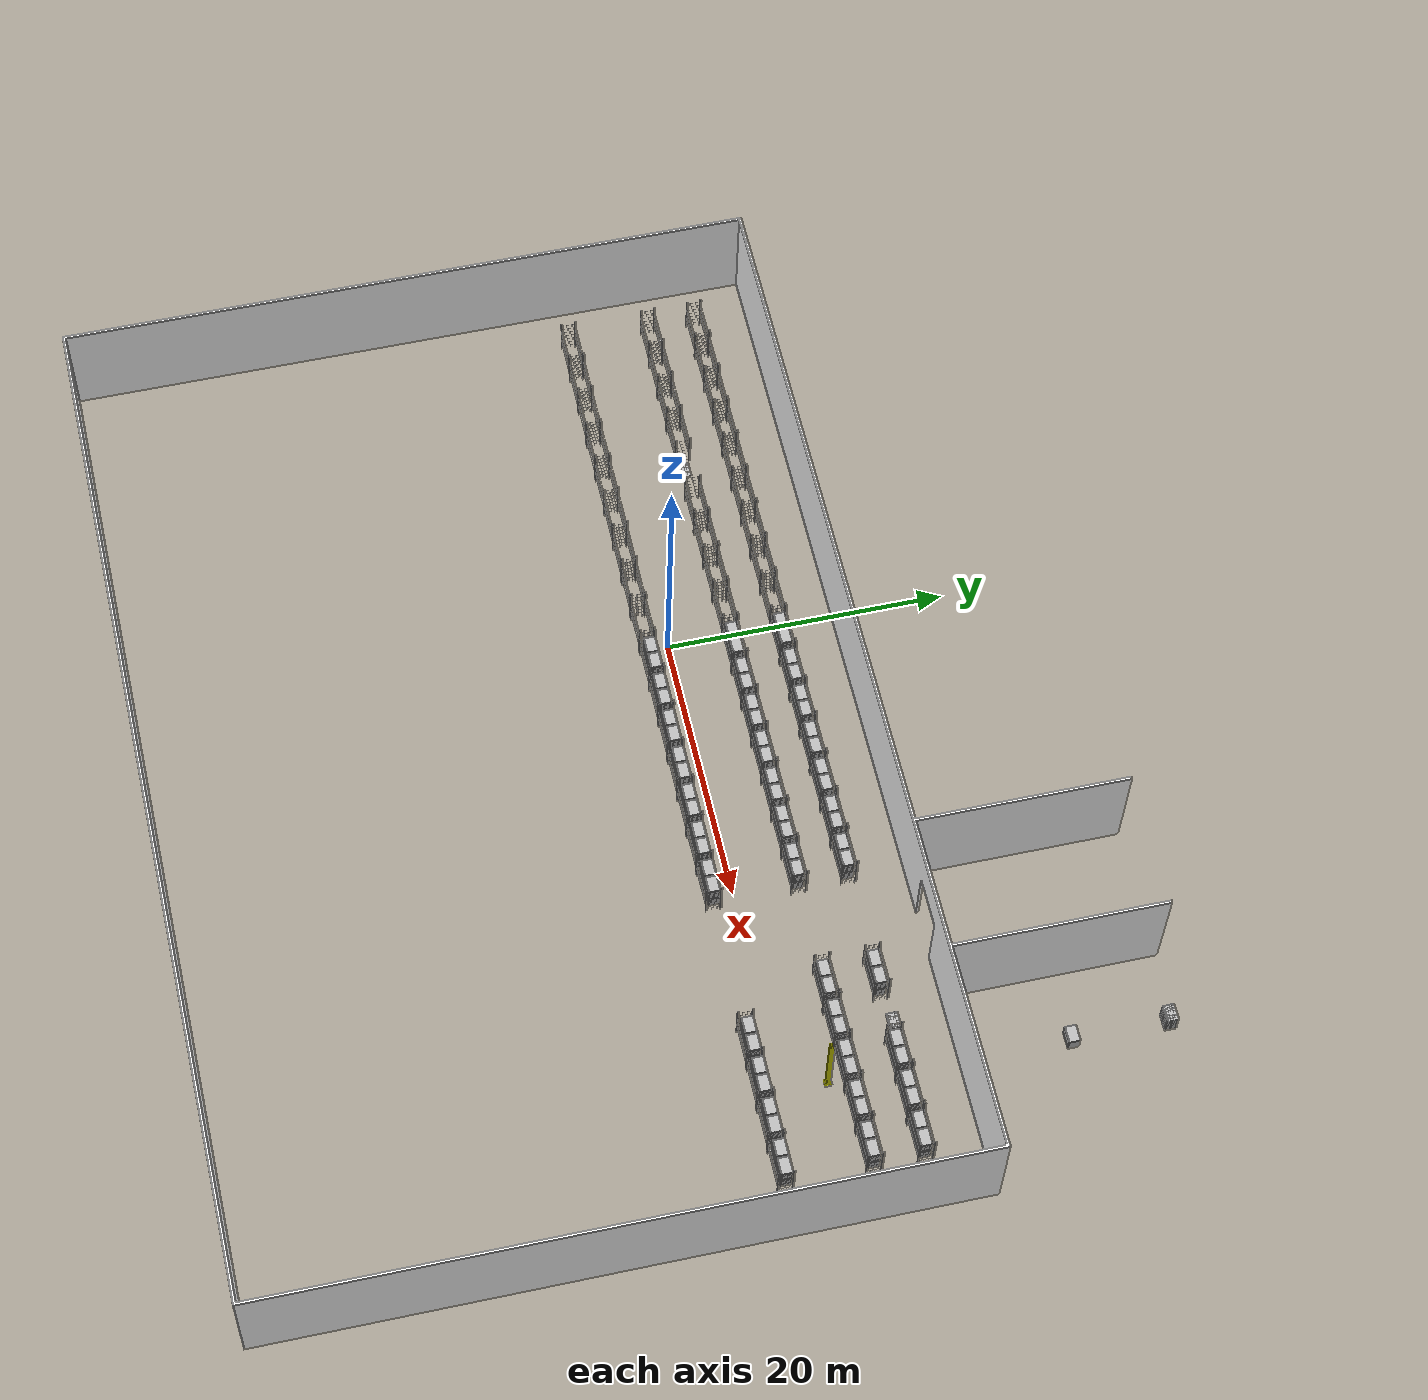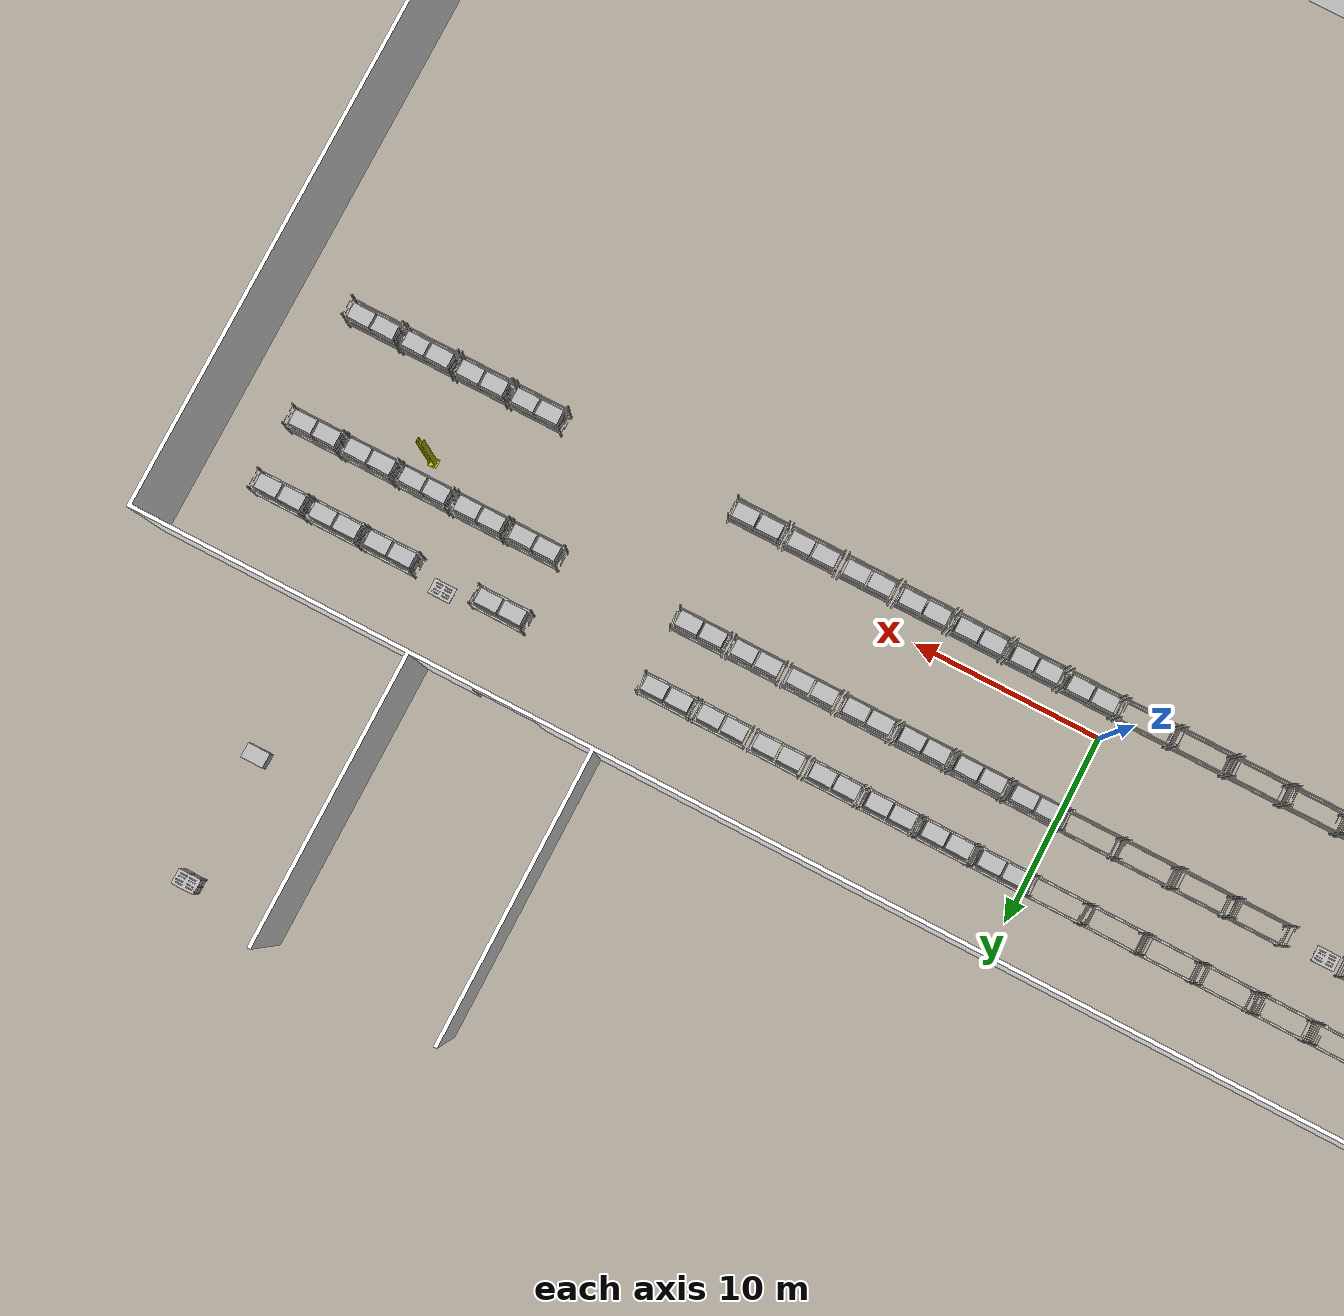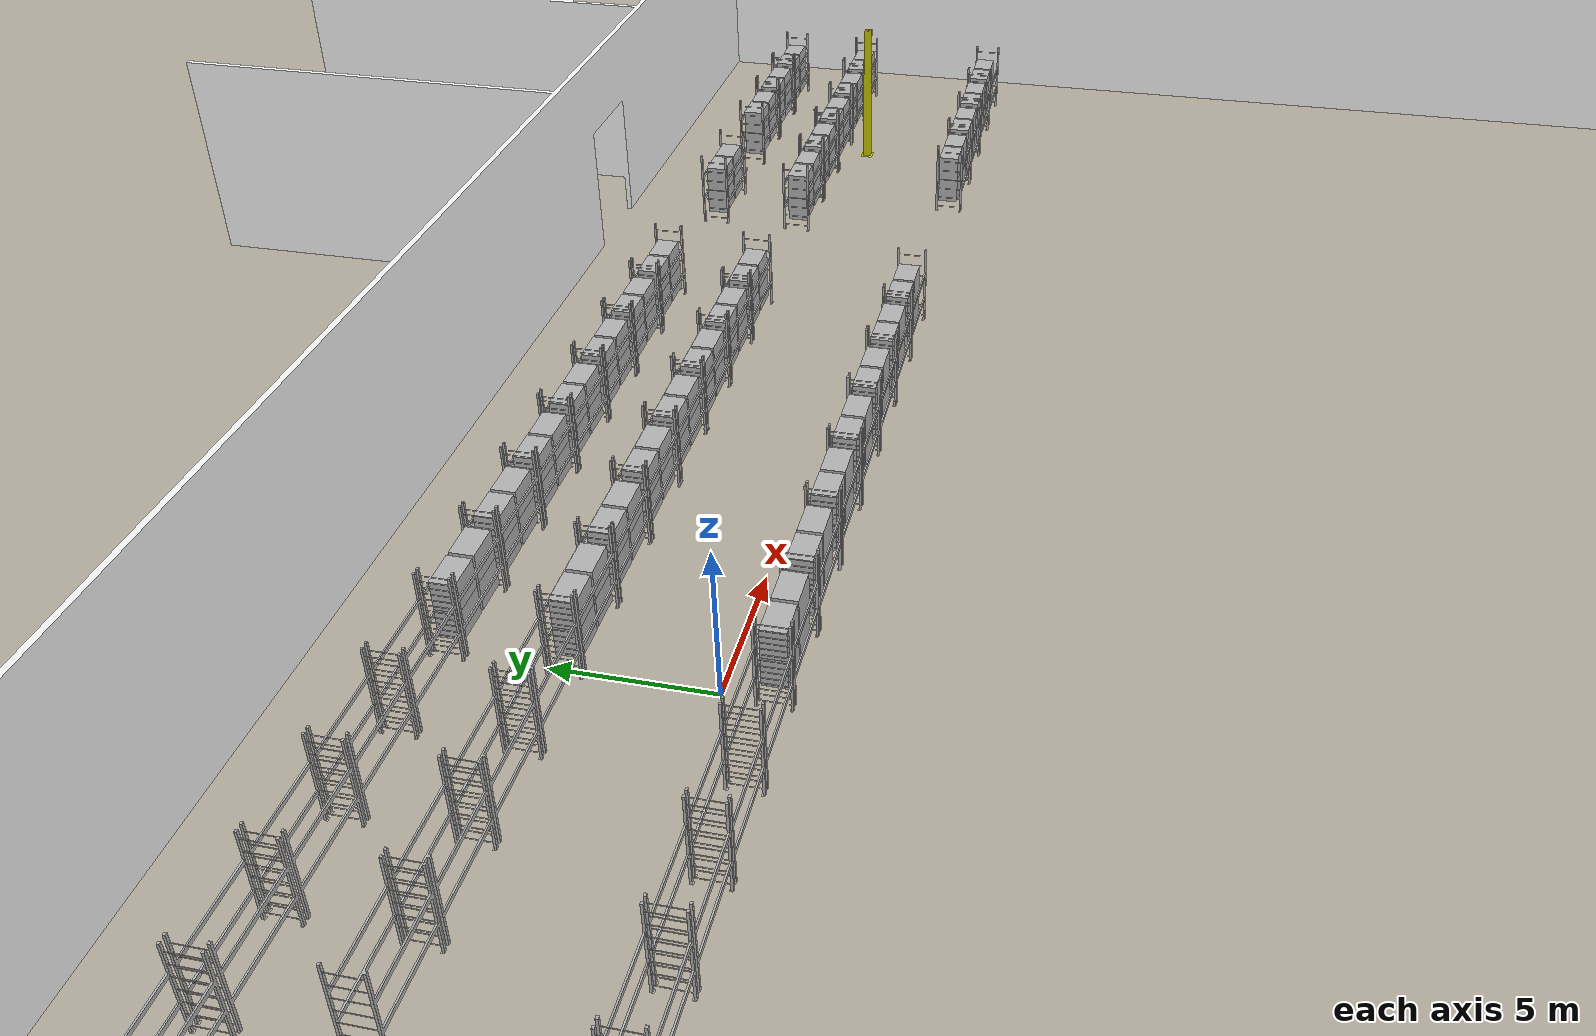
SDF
<sdf version="1.8">
 <world name="default">
  <gravity>0 0 -9.8</gravity>
  <physics type="ode">
   <max_step_size>0.01</max_step_size>
   <real_time_update_rate>100</real_time_update_rate>
   <real_time_factor>1</real_time_factor>
  </physics>
  <plugin filename="gz-sim-physics-system" name="gz::sim::systems::Physics"/>
  <plugin filename="gz-sim-user-commands-system" name="gz::sim::systems::UserCommands"/>
  <plugin filename="gz-sim-scene-broadcaster-system" name="gz::sim::systems::SceneBroadcaster"/>
  <plugin filename="gz-sim-sensors-system" name="gz::sim::systems::Sensors">
   <render_engine>ogre2</render_engine>
  </plugin>
  <plugin filename="gz-sim-imu-system" name="gz::sim::systems::Imu"/>
  <plugin filename="gz-sim-contact-system" name="gz::sim::systems::Contact"/>
  <plugin filename="gz-sim-triggered-publisher-system" name="gz::sim::systems::TriggeredPublisher"/>
  <scene>
   <ambient>1 1 1 1</ambient>
   <background>0.3 0.7 0.9 1</background>
   <shadows>0</shadows>
   <grid>false</grid>
  </scene>
  <light type="directional" name="sun">
   <cast_shadows>false</cast_shadows>
   <pose>0 0 10 0 0 0</pose>
   <diffuse>0.8 0.8 0.8 1</diffuse>
   <specular>0.2 0.2 0.2 1</specular>
   <attenuation>
    <range>1000</range>
    <constant>0.9</constant>
    <linear>0.01</linear>
    <quadratic>0.001</quadratic>
   </attenuation>
   <direction>0.1 0.1 -0.9</direction>
  </light>
  <include><uri>model://ground_collision</uri></include>
  <include><uri>model://factory</uri></include>
  <include>
   <static>1</static>
   <uri>model://shelf</uri>
   <name>shelf_wall_1_2</name>
   <pose>-27 -2  0.001 0 0 0</pose>
  </include>
  <include>
   <static>1</static>
   <uri>model://shelf</uri>
   <name>shelf_wall_1_3</name>
   <pose>-24 -2  0.001 0 0 0</pose>
  </include>
  <include>
   <static>1</static>
   <uri>model://shelf</uri>
   <name>shelf_wall_1_4</name>
   <pose>-21 -2  0.001 0 0 0</pose>
  </include>
  <include>
   <static>1</static>
   <uri>model://shelf</uri>
   <name>shelf_wall_1_5</name>
   <pose>-18 -2  0.001 0 0 0</pose>
  </include>
  <include>
   <static>1</static>
   <uri>model://shelf</uri>
   <name>shelf_wall_1_6</name>
   <pose>-15 -2  0.001 0 0 0</pose>
  </include>
  <include>
   <static>1</static>
   <uri>model://shelf</uri>
   <name>shelf_wall_1_7</name>
   <pose>-12 -2  0.001 0 0 0</pose>
  </include>
  <include>
   <static>1</static>
   <uri>model://shelf</uri>
   <name>shelf_wall_1_8</name>
   <pose>-9 -2  0.001 0 0 0</pose>
  </include>
  <include>
   <static>1</static>
   <uri>model://shelf</uri>
   <name>shelf_wall_1_9</name>
   <pose>-6 -2  0.001 0 0 0</pose>
  </include>
  <include>
   <static>1</static>
   <uri>model://shelf</uri>
   <name>shelf_wall_1_10</name>
   <pose>-3 -2  0.001 0 0 0</pose>
  </include>
  <include>
   <static>1</static>
   <uri>model://shelf</uri>
   <name>shelf_wall_1_11</name>
   <pose>0 -2  0.001 0 0 0</pose>
  </include>
  <include>
   <static>1</static>
   <uri>model://shelf</uri>
   <name>shelf_wall_1_12</name>
   <pose>3 -2  0.001 0 0 0</pose>
  </include>
  <include>
   <static>1</static>
   <uri>model://shelf</uri>
   <name>shelf_wall_1_13</name>
   <pose>6 -2  0.001 0 0 0</pose>
  </include>
  <include>
   <static>1</static>
   <uri>model://shelf</uri>
   <name>shelf_wall_1_14</name>
   <pose>9 -2  0.001 0 0 0</pose>
  </include>
  <include>
   <static>1</static>
   <uri>model://shelf</uri>
   <name>shelf_wall_1_15</name>
   <pose>12 -2  0.001 0 0 0</pose>
  </include>
  <include>
   <static>1</static>
   <uri>model://shelf</uri>
   <name>shelf_wall_1_16</name>
   <pose>15 -2  0.001 0 0 0</pose>
  </include>
  <include>
   <static>1</static>
   <uri>model://shelf</uri>
   <name>shelf_wall_1_17</name>
   <pose>18 -2  0.001 0 0 0</pose>
  </include>
  <include>
   <static>1</static>
   <uri>model://shelf</uri>
   <name>shelf_wall_1_21</name>
   <pose>30 -2  0.001 0 0 0</pose>
  </include>
  <include>
   <static>1</static>
   <uri>model://shelf</uri>
   <name>shelf_wall_1_22</name>
   <pose>33 -2  0.001 0 0 0</pose>
  </include>
  <include>
   <static>1</static>
   <uri>model://shelf</uri>
   <name>shelf_wall_1_23</name>
   <pose>36 -2  0.001 0 0 0</pose>
  </include>
  <include>
   <static>1</static>
   <uri>model://shelf</uri>
   <name>shelf_wall_1_24</name>
   <pose>39 -2  0.001 0 0 0</pose>
  </include>
  <include>
   <static>1</static>
   <uri>model://shelf</uri>
   <name>shelf_wall_2_2</name>
   <pose>-27 4  0.001 0 0 0</pose>
  </include>
  <include>
   <static>1</static>
   <uri>model://shelf</uri>
   <name>shelf_wall_2_3</name>
   <pose>-24 4  0.001 0 0 0</pose>
  </include>
  <include>
   <static>1</static>
   <uri>model://shelf</uri>
   <name>shelf_wall_2_4</name>
   <pose>-21 4  0.001 0 0 0</pose>
  </include>
  <include>
   <static>1</static>
   <uri>model://shelf</uri>
   <name>shelf_wall_2_5</name>
   <pose>-18 4  0.001 0 0 0</pose>
  </include>
  <include>
   <static>1</static>
   <uri>model://shelf</uri>
   <name>shelf_wall_2_7</name>
   <pose>-12 4  0.001 0 0 0</pose>
  </include>
  <include>
   <static>1</static>
   <uri>model://shelf</uri>
   <name>shelf_wall_2_8</name>
   <pose>-9 4  0.001 0 0 0</pose>
  </include>
  <include>
   <static>1</static>
   <uri>model://shelf</uri>
   <name>shelf_wall_2_9</name>
   <pose>-6 4  0.001 0 0 0</pose>
  </include>
  <include>
   <static>1</static>
   <uri>model://shelf</uri>
   <name>shelf_wall_2_10</name>
   <pose>-3 4  0.001 0 0 0</pose>
  </include>
  <include>
   <static>1</static>
   <uri>model://shelf</uri>
   <name>shelf_wall_2_11</name>
   <pose>0 4  0.001 0 0 0</pose>
  </include>
  <include>
   <static>1</static>
   <uri>model://shelf</uri>
   <name>shelf_wall_2_12</name>
   <pose>3 4  0.001 0 0 0</pose>
  </include>
  <include>
   <static>1</static>
   <uri>model://shelf</uri>
   <name>shelf_wall_2_13</name>
   <pose>6 4  0.001 0 0 0</pose>
  </include>
  <include>
   <static>1</static>
   <uri>model://shelf</uri>
   <name>shelf_wall_2_14</name>
   <pose>9 4  0.001 0 0 0</pose>
  </include>
  <include>
   <static>1</static>
   <uri>model://shelf</uri>
   <name>shelf_wall_2_15</name>
   <pose>12 4  0.001 0 0 0</pose>
  </include>
  <include>
   <static>1</static>
   <uri>model://shelf</uri>
   <name>shelf_wall_2_16</name>
   <pose>15 4  0.001 0 0 0</pose>
  </include>
  <include>
   <static>1</static>
   <uri>model://shelf</uri>
   <name>shelf_wall_2_17</name>
   <pose>18 4  0.001 0 0 0</pose>
  </include>
  <include>
   <static>1</static>
   <uri>model://shelf</uri>
   <name>shelf_wall_2_20</name>
   <pose>27 4  0.001 0 0 0</pose>
  </include>
  <include>
   <static>1</static>
   <uri>model://shelf</uri>
   <name>shelf_wall_2_21</name>
   <pose>30 4  0.001 0 0 0</pose>
  </include>
  <include>
   <static>1</static>
   <uri>model://shelf</uri>
   <name>shelf_wall_2_22</name>
   <pose>33 4  0.001 0 0 0</pose>
  </include>
  <include>
   <static>1</static>
   <uri>model://shelf</uri>
   <name>shelf_wall_2_23</name>
   <pose>36 4  0.001 0 0 0</pose>
  </include>
  <include>
   <static>1</static>
   <uri>model://shelf</uri>
   <name>shelf_wall_2_24</name>
   <pose>39 4  0.001 0 0 0</pose>
  </include>
  <include>
   <static>1</static>
   <uri>model://shelf</uri>
   <name>shelf_wall_3_2</name>
   <pose>-27 7.5  0.001 0 0 0</pose>
  </include>
  <include>
   <static>1</static>
   <uri>model://shelf</uri>
   <name>shelf_wall_3_3</name>
   <pose>-24 7.5  0.001 0 0 0</pose>
  </include>
  <include>
   <static>1</static>
   <uri>model://shelf</uri>
   <name>shelf_wall_3_4</name>
   <pose>-21 7.5  0.001 0 0 0</pose>
  </include>
  <include>
   <static>1</static>
   <uri>model://shelf</uri>
   <name>shelf_wall_3_5</name>
   <pose>-18 7.5  0.001 0 0 0</pose>
  </include>
  <include>
   <static>1</static>
   <uri>model://shelf</uri>
   <name>shelf_wall_3_6</name>
   <pose>-15 7.5  0.001 0 0 0</pose>
  </include>
  <include>
   <static>1</static>
   <uri>model://shelf</uri>
   <name>shelf_wall_3_7</name>
   <pose>-12 7.5  0.001 0 0 0</pose>
  </include>
  <include>
   <static>1</static>
   <uri>model://shelf</uri>
   <name>shelf_wall_3_8</name>
   <pose>-9 7.5  0.001 0 0 0</pose>
  </include>
  <include>
   <static>1</static>
   <uri>model://shelf</uri>
   <name>shelf_wall_3_9</name>
   <pose>-6 7.5  0.001 0 0 0</pose>
  </include>
  <include>
   <static>1</static>
   <uri>model://shelf</uri>
   <name>shelf_wall_3_10</name>
   <pose>-3 7.5  0.001 0 0 0</pose>
  </include>
  <include>
   <static>1</static>
   <uri>model://shelf</uri>
   <name>shelf_wall_3_11</name>
   <pose>0 7.5  0.001 0 0 0</pose>
  </include>
  <include>
   <static>1</static>
   <uri>model://shelf</uri>
   <name>shelf_wall_3_12</name>
   <pose>3 7.5  0.001 0 0 0</pose>
  </include>
  <include>
   <static>1</static>
   <uri>model://shelf</uri>
   <name>shelf_wall_3_13</name>
   <pose>6 7.5  0.001 0 0 0</pose>
  </include>
  <include>
   <static>1</static>
   <uri>model://shelf</uri>
   <name>shelf_wall_3_14</name>
   <pose>9 7.5  0.001 0 0 0</pose>
  </include>
  <include>
   <static>1</static>
   <uri>model://shelf</uri>
   <name>shelf_wall_3_15</name>
   <pose>12 7.5  0.001 0 0 0</pose>
  </include>
  <include>
   <static>1</static>
   <uri>model://shelf</uri>
   <name>shelf_wall_3_16</name>
   <pose>15 7.5  0.001 0 0 0</pose>
  </include>
  <include>
   <static>1</static>
   <uri>model://shelf</uri>
   <name>shelf_wall_3_17</name>
   <pose>18 7.5  0.001 0 0 0</pose>
  </include>
  <include>
   <static>1</static>
   <uri>model://shelf</uri>
   <name>shelf_wall_3_20</name>
   <pose>27 7.5  0.001 0 0 0</pose>
  </include>
  <include>
   <static>1</static>
   <uri>model://shelf</uri>
   <name>shelf_wall_3_22</name>
   <pose>33 7.5  0.001 0 0 0</pose>
  </include>
  <include>
   <static>1</static>
   <uri>model://shelf</uri>
   <name>shelf_wall_3_23</name>
   <pose>36 7.5  0.001 0 0 0</pose>
  </include>
  <include>
   <static>1</static>
   <uri>model://shelf</uri>
   <name>shelf_wall_3_24</name>
   <pose>39 7.5  0.001 0 0 0</pose>
  </include>
  <include><uri>model://eur_pallet</uri><name>pallet_group_pickup</name><pose>-15 4 0.001 0 0 0</pose></include>
  <include>
   <uri>model://eur_pallet</uri>
   <name>pallet_group_dropoff</name>
   <pose>31 8 0.001 0 -0 0</pose>
  </include>
  <include><uri>model://eur_pallet</uri><name>pallet_stack2_n1</name><pose>35 26 0.1 0 0 0</pose></include>
  <include><uri>model://eur_pallet</uri><name>pallet_stack2_n2</name><pose>35 26 0.25 0 0 0</pose></include>
  <include><uri>model://eur_pallet</uri><name>pallet_stack2_n3</name><pose>35 26 0.4 0 0 0</pose></include>
  <include><uri>model://eur_pallet</uri><name>pallet_stack2_n4</name><pose>35 26 0.55 0 0 0</pose></include>
  <include><uri>model://eur_pallet</uri><name>pallet_stack2_n5</name><pose>35 26 0.7 0 0 0</pose></include>
  <include><uri>model://eur_pallet</uri><name>pallet_stack2_n6</name><pose>35 26 0.85 0 0 0</pose></include>
  <include><uri>model://eur_pallet</uri><name>pallet_stack2_n7</name><pose>35 26 1.0 0 0 0</pose></include>
  <include><uri>model://eur_pallet</uri><name>pallet_stack2_n8</name><pose>35 26 1.15 0 0 0</pose></include>
  <include><uri>model://eur_pallet</uri><name>pallet_stack2_n9</name><pose>35 26 1.3 0 0 0</pose></include>
  <include><uri>model://eur_pallet</uri><name>pallet_stack2_n10</name><pose>35 26 1.45 0 0 0</pose></include>
  <include><uri>model://box_1185x785x1010</uri><name>box_move</name><pose>35 20 0.4 0 0 0</pose></include>
  <include>
   <static>1</static>
   <uri>model://support_pole</uri>
   <name>support_pole_move</name>
   <pose>35 3 0.001 0 0 0</pose>
  </include>
  <include>
   <uri>model://box_1185x785x1010</uri>
   <name>shelf_box_r1_n1_br</name>
   <pose>0.2 -1.1 0.4 0 0 0</pose>
  </include>
  <include>
   <uri>model://box_1185x785x1010</uri>
   <name>shelf_box_r1_n1_tr</name>
   <pose>0.2 -1.1 1.4 0 0 0</pose>
  </include>
  <include>
   <uri>model://box_1185x785x1010</uri>
   <name>shelf_box_r1_n1_bl</name>
   <pose>1.5 -1.1 0.4 0 0 0</pose>
  </include>
  <include>
   <uri>model://box_1185x785x1010</uri>
   <name>shelf_box_r1_n1_tl</name>
   <pose>1.5 -1.1 1.4 0 0 0</pose>
  </include>
  <include>
   <uri>model://box_1185x785x1010</uri>
   <name>shelf_box_r1_n2_br</name>
   <pose>3.2 -1.1 0.4 0 0 0</pose>
  </include>
  <include>
   <uri>model://box_1185x785x1010</uri>
   <name>shelf_box_r1_n2_tr</name>
   <pose>3.2 -1.1 1.4 0 0 0</pose>
  </include>
  <include>
   <uri>model://box_1185x785x1010</uri>
   <name>shelf_box_r1_n2_bl</name>
   <pose>4.5 -1.1 0.4 0 0 0</pose>
  </include>
  <include>
   <uri>model://box_1185x785x1010</uri>
   <name>shelf_box_r1_n2_tl</name>
   <pose>4.5 -1.1 1.4 0 0 0</pose>
  </include>
  <include>
   <uri>model://box_1185x785x1010</uri>
   <name>shelf_box_r1_n3_br</name>
   <pose>6.2 -1.1 0.4 0 0 0</pose>
  </include>
  <include>
   <uri>model://box_1185x785x1010</uri>
   <name>shelf_box_r1_n3_tr</name>
   <pose>6.2 -1.1 1.4 0 0 0</pose>
  </include>
  <include>
   <uri>model://box_1185x785x1010</uri>
   <name>shelf_box_r1_n3_bl</name>
   <pose>7.5 -1.1 0.4 0 0 0</pose>
  </include>
  <include>
   <uri>model://box_1185x785x1010</uri>
   <name>shelf_box_r1_n3_tl</name>
   <pose>7.5 -1.1 1.4 0 0 0</pose>
  </include>
  <include>
   <uri>model://box_1185x785x1010</uri>
   <name>shelf_box_r1_n4_br</name>
   <pose>9.2 -1.1 0.4 0 0 0</pose>
  </include>
  <include>
   <uri>model://box_1185x785x1010</uri>
   <name>shelf_box_r1_n4_tr</name>
   <pose>9.2 -1.1 1.4 0 0 0</pose>
  </include>
  <include>
   <uri>model://box_1185x785x1010</uri>
   <name>shelf_box_r1_n4_bl</name>
   <pose>10.5 -1.1 0.4 0 0 0</pose>
  </include>
  <include>
   <uri>model://box_1185x785x1010</uri>
   <name>shelf_box_r1_n4_tl</name>
   <pose>10.5 -1.1 1.4 0 0 0</pose>
  </include>
  <include>
   <uri>model://box_1185x785x1010</uri>
   <name>shelf_box_r1_n5_br</name>
   <pose>12.2 -1.1 0.4 0 0 0</pose>
  </include>
  <include>
   <uri>model://box_1185x785x1010</uri>
   <name>shelf_box_r1_n5_tr</name>
   <pose>12.2 -1.1 1.4 0 0 0</pose>
  </include>
  <include>
   <uri>model://box_1185x785x1010</uri>
   <name>shelf_box_r1_n5_bl</name>
   <pose>13.5 -1.1 0.4 0 0 0</pose>
  </include>
  <include>
   <uri>model://box_1185x785x1010</uri>
   <name>shelf_box_r1_n5_tl</name>
   <pose>13.5 -1.1 1.4 0 0 0</pose>
  </include>
  <include>
   <uri>model://box_1185x785x1010</uri>
   <name>shelf_box_r1_n6_br</name>
   <pose>15.2 -1.1 0.4 0 0 0</pose>
  </include>
  <include>
   <uri>model://box_1185x785x1010</uri>
   <name>shelf_box_r1_n6_tr</name>
   <pose>15.2 -1.1 1.4 0 0 0</pose>
  </include>
  <include>
   <uri>model://box_1185x785x1010</uri>
   <name>shelf_box_r1_n6_bl</name>
   <pose>16.5 -1.1 0.4 0 0 0</pose>
  </include>
  <include>
   <uri>model://box_1185x785x1010</uri>
   <name>shelf_box_r1_n6_tl</name>
   <pose>16.5 -1.1 1.4 0 0 0</pose>
  </include>
  <include>
   <uri>model://box_1185x785x1010</uri>
   <name>shelf_box_r1_n7_br</name>
   <pose>18.2 -1.1 0.4 0 0 0</pose>
  </include>
  <include>
   <uri>model://box_1185x785x1010</uri>
   <name>shelf_box_r1_n7_tr</name>
   <pose>18.2 -1.1 1.4 0 0 0</pose>
  </include>
  <include>
   <uri>model://box_1185x785x1010</uri>
   <name>shelf_box_r1_n7_bl</name>
   <pose>19.5 -1.1 0.4 0 0 0</pose>
  </include>
  <include>
   <uri>model://box_1185x785x1010</uri>
   <name>shelf_box_r1_n7_tl</name>
   <pose>19.5 -1.1 1.4 0 0 0</pose>
  </include>
  <include>
   <uri>model://box_1185x785x1010</uri>
   <name>shelf_box_r2_n1_br</name>
   <pose>0.2 4.8 0.4 0 0 0</pose>
  </include>
  <include>
   <uri>model://box_1185x785x1010</uri>
   <name>shelf_box_r2_n1_tr</name>
   <pose>0.2 4.8 1.4 0 0 0</pose>
  </include>
  <include>
   <uri>model://box_1185x785x1010</uri>
   <name>shelf_box_r2_n1_bl</name>
   <pose>1.5 4.8 0.4 0 0 0</pose>
  </include>
  <include>
   <uri>model://box_1185x785x1010</uri>
   <name>shelf_box_r2_n1_tl</name>
   <pose>1.5 4.8 1.4 0 0 0</pose>
  </include>
  <include>
   <uri>model://box_1185x785x1010</uri>
   <name>shelf_box_r2_n2_br</name>
   <pose>3.2 4.8 0.4 0 0 0</pose>
  </include>
  <include>
   <uri>model://box_1185x785x1010</uri>
   <name>shelf_box_r2_n2_tr</name>
   <pose>3.2 4.8 1.4 0 0 0</pose>
  </include>
  <include>
   <uri>model://box_1185x785x1010</uri>
   <name>shelf_box_r2_n2_bl</name>
   <pose>4.5 4.8 0.4 0 0 0</pose>
  </include>
  <include>
   <uri>model://box_1185x785x1010</uri>
   <name>shelf_box_r2_n2_tl</name>
   <pose>4.5 4.8 1.4 0 0 0</pose>
  </include>
  <include>
   <uri>model://box_1185x785x1010</uri>
   <name>shelf_box_r2_n3_br</name>
   <pose>6.2 4.8 0.4 0 0 0</pose>
  </include>
  <include>
   <uri>model://box_1185x785x1010</uri>
   <name>shelf_box_r2_n3_tr</name>
   <pose>6.2 4.8 1.4 0 0 0</pose>
  </include>
  <include>
   <uri>model://box_1185x785x1010</uri>
   <name>shelf_box_r2_n3_bl</name>
   <pose>7.5 4.8 0.4 0 0 0</pose>
  </include>
  <include>
   <uri>model://box_1185x785x1010</uri>
   <name>shelf_box_r2_n3_tl</name>
   <pose>7.5 4.8 1.4 0 0 0</pose>
  </include>
  <include>
   <uri>model://box_1185x785x1010</uri>
   <name>shelf_box_r2_n4_br</name>
   <pose>9.2 4.8 0.4 0 0 0</pose>
  </include>
  <include>
   <uri>model://box_1185x785x1010</uri>
   <name>shelf_box_r2_n4_tr</name>
   <pose>9.2 4.8 1.4 0 0 0</pose>
  </include>
  <include>
   <uri>model://box_1185x785x1010</uri>
   <name>shelf_box_r2_n4_bl</name>
   <pose>10.5 4.8 0.4 0 0 0</pose>
  </include>
  <include>
   <uri>model://box_1185x785x1010</uri>
   <name>shelf_box_r2_n4_tl</name>
   <pose>10.5 4.8 1.4 0 0 0</pose>
  </include>
  <include>
   <uri>model://box_1185x785x1010</uri>
   <name>shelf_box_r2_n5_br</name>
   <pose>12.2 4.8 0.4 0 0 0</pose>
  </include>
  <include>
   <uri>model://box_1185x785x1010</uri>
   <name>shelf_box_r2_n5_tr</name>
   <pose>12.2 4.8 1.4 0 0 0</pose>
  </include>
  <include>
   <uri>model://box_1185x785x1010</uri>
   <name>shelf_box_r2_n5_bl</name>
   <pose>13.5 4.8 0.4 0 0 0</pose>
  </include>
  <include>
   <uri>model://box_1185x785x1010</uri>
   <name>shelf_box_r2_n5_tl</name>
   <pose>13.5 4.8 1.4 0 0 0</pose>
  </include>
  <include>
   <uri>model://box_1185x785x1010</uri>
   <name>shelf_box_r2_n6_br</name>
   <pose>15.2 4.8 0.4 0 0 0</pose>
  </include>
  <include>
   <uri>model://box_1185x785x1010</uri>
   <name>shelf_box_r2_n6_tr</name>
   <pose>15.2 4.8 1.4 0 0 0</pose>
  </include>
  <include>
   <uri>model://box_1185x785x1010</uri>
   <name>shelf_box_r2_n6_bl</name>
   <pose>16.5 4.8 0.4 0 0 0</pose>
  </include>
  <include>
   <uri>model://box_1185x785x1010</uri>
   <name>shelf_box_r2_n6_tl</name>
   <pose>16.5 4.8 1.4 0 0 0</pose>
  </include>
  <include>
   <uri>model://box_1185x785x1010</uri>
   <name>shelf_box_r2_n7_br</name>
   <pose>18.2 4.8 0.4 0 0 0</pose>
  </include>
  <include>
   <uri>model://box_1185x785x1010</uri>
   <name>shelf_box_r2_n7_tr</name>
   <pose>18.2 4.8 1.4 0 0 0</pose>
  </include>
  <include>
   <uri>model://box_1185x785x1010</uri>
   <name>shelf_box_r2_n7_bl</name>
   <pose>19.5 4.8 0.4 0 0 0</pose>
  </include>
  <include>
   <uri>model://box_1185x785x1010</uri>
   <name>shelf_box_r2_n7_tl</name>
   <pose>19.5 4.8 1.4 0 0 0</pose>
  </include>
  <include>
   <uri>model://box_1185x785x1010</uri>
   <name>shelf_box_r3_n1_br</name>
   <pose>0.2 8.3 0.4 0 0 0</pose>
  </include>
  <include>
   <uri>model://box_1185x785x1010</uri>
   <name>shelf_box_r3_n1_tr</name>
   <pose>0.2 8.3 1.4 0 0 0</pose>
  </include>
  <include>
   <uri>model://box_1185x785x1010</uri>
   <name>shelf_box_r3_n1_bl</name>
   <pose>1.5 8.3 0.4 0 0 0</pose>
  </include>
  <include>
   <uri>model://box_1185x785x1010</uri>
   <name>shelf_box_r3_n1_tl</name>
   <pose>1.5 8.3 1.4 0 0 0</pose>
  </include>
  <include>
   <uri>model://box_1185x785x1010</uri>
   <name>shelf_box_r3_n2_br</name>
   <pose>3.2 8.3 0.4 0 0 0</pose>
  </include>
  <include>
   <uri>model://box_1185x785x1010</uri>
   <name>shelf_box_r3_n2_tr</name>
   <pose>3.2 8.3 1.4 0 0 0</pose>
  </include>
  <include>
   <uri>model://box_1185x785x1010</uri>
   <name>shelf_box_r3_n2_bl</name>
   <pose>4.5 8.3 0.4 0 0 0</pose>
  </include>
  <include>
   <uri>model://box_1185x785x1010</uri>
   <name>shelf_box_r3_n2_tl</name>
   <pose>4.5 8.3 1.4 0 0 0</pose>
  </include>
  <include>
   <uri>model://box_1185x785x1010</uri>
   <name>shelf_box_r3_n3_br</name>
   <pose>6.2 8.3 0.4 0 0 0</pose>
  </include>
  <include>
   <uri>model://box_1185x785x1010</uri>
   <name>shelf_box_r3_n3_tr</name>
   <pose>6.2 8.3 1.4 0 0 0</pose>
  </include>
  <include>
   <uri>model://box_1185x785x1010</uri>
   <name>shelf_box_r3_n3_bl</name>
   <pose>7.5 8.3 0.4 0 0 0</pose>
  </include>
  <include>
   <uri>model://box_1185x785x1010</uri>
   <name>shelf_box_r3_n3_tl</name>
   <pose>7.5 8.3 1.4 0 0 0</pose>
  </include>
  <include>
   <uri>model://box_1185x785x1010</uri>
   <name>shelf_box_r3_n4_br</name>
   <pose>9.2 8.3 0.4 0 0 0</pose>
  </include>
  <include>
   <uri>model://box_1185x785x1010</uri>
   <name>shelf_box_r3_n4_tr</name>
   <pose>9.2 8.3 1.4 0 0 0</pose>
  </include>
  <include>
   <uri>model://box_1185x785x1010</uri>
   <name>shelf_box_r3_n4_bl</name>
   <pose>10.5 8.3 0.4 0 0 0</pose>
  </include>
  <include>
   <uri>model://box_1185x785x1010</uri>
   <name>shelf_box_r3_n4_tl</name>
   <pose>10.5 8.3 1.4 0 0 0</pose>
  </include>
  <include>
   <uri>model://box_1185x785x1010</uri>
   <name>shelf_box_r3_n5_br</name>
   <pose>12.2 8.3 0.4 0 0 0</pose>
  </include>
  <include>
   <uri>model://box_1185x785x1010</uri>
   <name>shelf_box_r3_n5_tr</name>
   <pose>12.2 8.3 1.4 0 0 0</pose>
  </include>
  <include>
   <uri>model://box_1185x785x1010</uri>
   <name>shelf_box_r3_n5_bl</name>
   <pose>13.5 8.3 0.4 0 0 0</pose>
  </include>
  <include>
   <uri>model://box_1185x785x1010</uri>
   <name>shelf_box_r3_n5_tl</name>
   <pose>13.5 8.3 1.4 0 0 0</pose>
  </include>
  <include>
   <uri>model://box_1185x785x1010</uri>
   <name>shelf_box_r3_n6_br</name>
   <pose>15.2 8.3 0.4 0 0 0</pose>
  </include>
  <include>
   <uri>model://box_1185x785x1010</uri>
   <name>shelf_box_r3_n6_tr</name>
   <pose>15.2 8.3 1.4 0 0 0</pose>
  </include>
  <include>
   <uri>model://box_1185x785x1010</uri>
   <name>shelf_box_r3_n6_bl</name>
   <pose>16.5 8.3 0.4 0 0 0</pose>
  </include>
  <include>
   <uri>model://box_1185x785x1010</uri>
   <name>shelf_box_r3_n6_tl</name>
   <pose>16.5 8.3 1.4 0 0 0</pose>
  </include>
  <include>
   <uri>model://box_1185x785x1010</uri>
   <name>shelf_box_r3_n7_br</name>
   <pose>18.2 8.3 0.4 0 0 0</pose>
  </include>
  <include>
   <uri>model://box_1185x785x1010</uri>
   <name>shelf_box_r3_n7_tr</name>
   <pose>18.2 8.3 1.4 0 0 0</pose>
  </include>
  <include>
   <uri>model://box_1185x785x1010</uri>
   <name>shelf_box_r3_n7_bl</name>
   <pose>19.5 8.3 0.4 0 0 0</pose>
  </include>
  <include>
   <uri>model://box_1185x785x1010</uri>
   <name>shelf_box_r3_n7_tl</name>
   <pose>19.5 8.3 1.4 0 0 0</pose>
  </include>
  <include>
   <uri>model://box_1185x785x1010</uri>
   <name>shelf_box_r4_n1_br</name>
   <pose>30.2 -1.1 0.4 0 0 0</pose>
  </include>
  <include>
   <uri>model://box_1185x785x1010</uri>
   <name>shelf_box_r4_n1_tr</name>
   <pose>30.2 -1.1 1.4 0 0 0</pose>
  </include>
  <include>
   <uri>model://box_1185x785x1010</uri>
   <name>shelf_box_r4_n1_bl</name>
   <pose>31.5 -1.1 0.4 0 0 0</pose>
  </include>
  <include>
   <uri>model://box_1185x785x1010</uri>
   <name>shelf_box_r4_n1_tl</name>
   <pose>31.5 -1.1 1.4 0 0 0</pose>
  </include>
  <include>
   <uri>model://box_1185x785x1010</uri>
   <name>shelf_box_r4_n2_br</name>
   <pose>33.2 -1.1 0.4 0 0 0</pose>
  </include>
  <include>
   <uri>model://box_1185x785x1010</uri>
   <name>shelf_box_r4_n2_tr</name>
   <pose>33.2 -1.1 1.4 0 0 0</pose>
  </include>
  <include>
   <uri>model://box_1185x785x1010</uri>
   <name>shelf_box_r4_n2_bl</name>
   <pose>34.5 -1.1 0.4 0 0 0</pose>
  </include>
  <include>
   <uri>model://box_1185x785x1010</uri>
   <name>shelf_box_r4_n2_tl</name>
   <pose>34.5 -1.1 1.4 0 0 0</pose>
  </include>
  <include>
   <uri>model://box_1185x785x1010</uri>
   <name>shelf_box_r4_n3_br</name>
   <pose>36.2 -1.1 0.4 0 0 0</pose>
  </include>
  <include>
   <uri>model://box_1185x785x1010</uri>
   <name>shelf_box_r4_n3_tr</name>
   <pose>36.2 -1.1 1.4 0 0 0</pose>
  </include>
  <include>
   <uri>model://box_1185x785x1010</uri>
   <name>shelf_box_r4_n3_bl</name>
   <pose>37.5 -1.1 0.4 0 0 0</pose>
  </include>
  <include>
   <uri>model://box_1185x785x1010</uri>
   <name>shelf_box_r4_n3_tl</name>
   <pose>37.5 -1.1 1.4 0 0 0</pose>
  </include>
  <include>
   <uri>model://box_1185x785x1010</uri>
   <name>shelf_box_r4_n4_br</name>
   <pose>39.2 -1.1 0.4 0 0 0</pose>
  </include>
  <include>
   <uri>model://box_1185x785x1010</uri>
   <name>shelf_box_r4_n4_tr</name>
   <pose>39.2 -1.1 1.4 0 0 0</pose>
  </include>
  <include>
   <uri>model://box_1185x785x1010</uri>
   <name>shelf_box_r4_n4_bl</name>
   <pose>40.5 -1.1 0.4 0 0 0</pose>
  </include>
  <include>
   <uri>model://box_1185x785x1010</uri>
   <name>shelf_box_r4_n4_tl</name>
   <pose>40.5 -1.1 1.4 0 0 0</pose>
  </include>
  <include>
   <uri>model://box_1185x785x1010</uri>
   <name>shelf_box_r5_n1_br</name>
   <pose>27.2 4.8 0.4 0 0 0</pose>
  </include>
  <include>
   <uri>model://box_1185x785x1010</uri>
   <name>shelf_box_r5_n1_tr</name>
   <pose>27.2 4.8 1.4 0 0 0</pose>
  </include>
  <include>
   <uri>model://box_1185x785x1010</uri>
   <name>shelf_box_r5_n1_bl</name>
   <pose>28.5 4.8 0.4 0 0 0</pose>
  </include>
  <include>
   <uri>model://box_1185x785x1010</uri>
   <name>shelf_box_r5_n1_tl</name>
   <pose>28.5 4.8 1.4 0 0 0</pose>
  </include>
  <include>
   <uri>model://box_1185x785x1010</uri>
   <name>shelf_box_r5_n2_br</name>
   <pose>30.2 4.8 0.4 0 0 0</pose>
  </include>
  <include>
   <uri>model://box_1185x785x1010</uri>
   <name>shelf_box_r5_n2_tr</name>
   <pose>30.2 4.8 1.4 0 0 0</pose>
  </include>
  <include>
   <uri>model://box_1185x785x1010</uri>
   <name>shelf_box_r5_n2_bl</name>
   <pose>31.5 4.8 0.4 0 0 0</pose>
  </include>
  <include>
   <uri>model://box_1185x785x1010</uri>
   <name>shelf_box_r5_n2_tl</name>
   <pose>31.5 4.8 1.4 0 0 0</pose>
  </include>
  <include>
   <uri>model://box_1185x785x1010</uri>
   <name>shelf_box_r5_n3_br</name>
   <pose>33.2 4.8 0.4 0 0 0</pose>
  </include>
  <include>
   <uri>model://box_1185x785x1010</uri>
   <name>shelf_box_r5_n3_tr</name>
   <pose>33.2 4.8 1.4 0 0 0</pose>
  </include>
  <include>
   <uri>model://box_1185x785x1010</uri>
   <name>shelf_box_r5_n3_bl</name>
   <pose>34.5 4.8 0.4 0 0 0</pose>
  </include>
  <include>
   <uri>model://box_1185x785x1010</uri>
   <name>shelf_box_r5_n3_tl</name>
   <pose>34.5 4.8 1.4 0 0 0</pose>
  </include>
  <include>
   <uri>model://box_1185x785x1010</uri>
   <name>shelf_box_r5_n4_br</name>
   <pose>36.2 4.8 0.4 0 0 0</pose>
  </include>
  <include>
   <uri>model://box_1185x785x1010</uri>
   <name>shelf_box_r5_n4_tr</name>
   <pose>36.2 4.8 1.4 0 0 0</pose>
  </include>
  <include>
   <uri>model://box_1185x785x1010</uri>
   <name>shelf_box_r5_n4_bl</name>
   <pose>37.5 4.8 0.4 0 0 0</pose>
  </include>
  <include>
   <uri>model://box_1185x785x1010</uri>
   <name>shelf_box_r5_n4_tl</name>
   <pose>37.5 4.8 1.4 0 0 0</pose>
  </include>
  <include>
   <uri>model://box_1185x785x1010</uri>
   <name>shelf_box_r5_n5_br</name>
   <pose>39.2 4.8 0.4 0 0 0</pose>
  </include>
  <include>
   <uri>model://box_1185x785x1010</uri>
   <name>shelf_box_r5_n5_tr</name>
   <pose>39.2 4.8 1.4 0 0 0</pose>
  </include>
  <include>
   <uri>model://box_1185x785x1010</uri>
   <name>shelf_box_r5_n5_bl</name>
   <pose>40.5 4.8 0.4 0 0 0</pose>
  </include>
  <include>
   <uri>model://box_1185x785x1010</uri>
   <name>shelf_box_r5_n5_tl</name>
   <pose>40.5 4.8 1.4 0 0 0</pose>
  </include>
  <include>
   <uri>model://box_1185x785x1010</uri>
   <name>shelf_box_r6_n1_br</name>
   <pose>27.2 8.3 0.4 0 0 0</pose>
  </include>
  <include>
   <uri>model://box_1185x785x1010</uri>
   <name>shelf_box_r6_n1_tr</name>
   <pose>27.2 8.3 1.4 0 0 0</pose>
  </include>
  <include>
   <uri>model://box_1185x785x1010</uri>
   <name>shelf_box_r6_n1_bl</name>
   <pose>28.5 8.3 0.4 0 0 0</pose>
  </include>
  <include>
   <uri>model://box_1185x785x1010</uri>
   <name>shelf_box_r6_n1_tl</name>
   <pose>28.5 8.3 1.4 0 0 0</pose>
  </include>
  <include>
   <uri>model://box_1185x785x1010</uri>
   <name>shelf_box_r6_n3_br</name>
   <pose>33.2 8.3 0.4 0 0 0</pose>
  </include>
  <include>
   <uri>model://box_1185x785x1010</uri>
   <name>shelf_box_r6_n3_tr</name>
   <pose>33.2 8.3 1.4 0 0 0</pose>
  </include>
  <include>
   <uri>model://box_1185x785x1010</uri>
   <name>shelf_box_r6_n3_bl</name>
   <pose>34.5 8.3 0.4 0 0 0</pose>
  </include>
  <include>
   <uri>model://box_1185x785x1010</uri>
   <name>shelf_box_r6_n3_tl</name>
   <pose>34.5 8.3 1.4 0 0 0</pose>
  </include>
  <include>
   <uri>model://box_1185x785x1010</uri>
   <name>shelf_box_r6_n4_br</name>
   <pose>36.2 8.3 0.4 0 0 0</pose>
  </include>
  <include>
   <uri>model://box_1185x785x1010</uri>
   <name>shelf_box_r6_n4_tr</name>
   <pose>36.2 8.3 1.4 0 0 0</pose>
  </include>
  <include>
   <uri>model://box_1185x785x1010</uri>
   <name>shelf_box_r6_n4_bl</name>
   <pose>37.5 8.3 0.4 0 0 0</pose>
  </include>
  <include>
   <uri>model://box_1185x785x1010</uri>
   <name>shelf_box_r6_n4_tl</name>
   <pose>37.5 8.3 1.4 0 0 0</pose>
  </include>
  <include>
   <uri>model://box_1185x785x1010</uri>
   <name>shelf_box_r6_n5_br</name>
   <pose>39.2 8.3 0.4 0 0 0</pose>
  </include>
  <include>
   <uri>model://box_1185x785x1010</uri>
   <name>shelf_box_r6_n5_tr</name>
   <pose>39.2 8.3 1.4 0 0 0</pose>
  </include>
  <include>
   <uri>model://box_1185x785x1010</uri>
   <name>shelf_box_r6_n5_bl</name>
   <pose>40.5 8.3 0.4 0 0 0</pose>
  </include>
  <include>
   <uri>model://box_1185x785x1010</uri>
   <name>shelf_box_r6_n5_tl</name>
   <pose>40.5 8.3 1.4 0 0 0</pose>
  </include>
 </world>
</sdf>

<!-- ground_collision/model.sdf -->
<sdf version="1.9">
<model name="ground_collision">
  <static>true</static>
    <link name="link">
      <collision name="collision">
        <geometry>
          <plane>
            <normal>0 0 1</normal>
            <size>100 100</size>
          </plane>
        </geometry>
        <surface>
          <friction>
            <ode>
              <mu>100</mu>
              <mu2>50</mu2>
            </ode>
          </friction>
        </surface>
      </collision>
    </link>
  </model>
</sdf>

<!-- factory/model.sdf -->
<sdf version="1.8">
  <model name="factory">
    <plugin filename="gz-sim-label-system" name="gz::sim::systems::Label">
      <label>2</label>
    </plugin>
    <static>true</static>
    <link name="building">
      <visual name="visual">
        <geometry>
          <mesh>
            <uri>model://factory/meshes/factory_with_entrence.dae</uri>
          </mesh>
        </geometry>
      </visual>
      <collision name="collision">
        <geometry>
          <mesh>
            <uri>model://factory/meshes/factory_with_entrence.dae</uri>
          </mesh>
        </geometry>
      </collision>

    </link>
    <plugin name="gz::sim::systems::Label" filename="gz-sim-label-system">
      <label>2</label>
    </plugin>
  </model>
</sdf>

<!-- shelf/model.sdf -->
<sdf version="1.9">
  <model name="shelf" canonical_link="node0_link">

    <link name="node0_link">
      <inertial>
        <inertia>
          <ixx>24.93052</ixx>
          <ixy>0</ixy>
          <ixz>0</ixz>
          <iyy>54.42990</iyy>
          <iyz>0</iyz>
          <izz>42.61899</izz>
        </inertia>
        <pose>1.44044 0.43986 1.49318 0 0 0</pose>
        <mass>40.00000</mass>
      </inertial>

      <visual name="node0">
        <pose>0 0 0 0 0 0</pose>
        <geometry>
          <mesh>
            <uri>model://shelf/meshes/textured_shelf_low_poly.dae</uri>
            <scale>1.00000 1.00000 1.00000</scale>
          </mesh>
        </geometry>
      </visual>
    </link>

    <plugin filename="gz-sim-label-system" name="gz::sim::systems::Label">
      <label>10</label>
    </plugin>

    <link name="collision_shelf_1">
      <inertial>
        <mass>0.0001</mass>
        <inertia>
          <ixx>1e-6</ixx>
          <iyy>1e-6</iyy>
          <izz>1e-6</izz>
          <ixy>0</ixy>
          <ixz>0</ixz>
          <iyz>0</iyz>
        </inertia>
      </inertial>
      <collision name="collision_shelf_1">
        <pose>1.45 0.45 0 0 0 0</pose>
        <geometry>
          <box>
            <size>2.7 1.2 0.13</size>
          </box>
        </geometry>
        <surface>
          <friction>
            <ode>
              <mu>1</mu>
              <mu2>1</mu2>
              <slip1>0</slip1>
              <slip2>0</slip2>
            </ode>
          </friction>
          <contact>
            <ode>
              <soft_cfm>0</soft_cfm>
              <soft_erp>0.2</soft_erp>
              <kp>1e+13</kp>
              <kd>1</kd>
              <max_vel>0.01</max_vel>
              <min_depth>0</min_depth>
            </ode>
          </contact>
        </surface>
      </collision>
    </link>

    <link name="collision_shelf_2">
      <inertial>
        <mass>0.0001</mass>
        <inertia>
          <ixx>1e-6</ixx>
          <iyy>1e-6</iyy>
          <izz>1e-6</izz>
          <ixy>0</ixy>
          <ixz>0</ixz>
          <iyz>0</iyz>
        </inertia>
      </inertial>
      <collision name="collision_shelf_2">
        <pose>1.45 0.45 1 0 0 0</pose>
        <geometry>
          <box>
            <size>2.7 1.2 0.13</size>
          </box>
        </geometry>
        <surface>
          <friction>
            <ode>
              <mu>1</mu>
              <mu2>1</mu2>
              <slip1>0</slip1>
              <slip2>0</slip2>
            </ode>
          </friction>
          <contact>
            <ode>
              <soft_cfm>0</soft_cfm>
              <soft_erp>0.2</soft_erp>
              <kp>1e+13</kp>
              <kd>1</kd>
              <max_vel>0.01</max_vel>
              <min_depth>0</min_depth>
            </ode>
          </contact>
        </surface>
      </collision>
    </link>

    <link name="collision_shelf_3">
      <inertial>
        <mass>0.0001</mass>
        <inertia>
          <ixx>1e-6</ixx>
          <iyy>1e-6</iyy>
          <izz>1e-6</izz>
          <ixy>0</ixy>
          <ixz>0</ixz>
          <iyz>0</iyz>
        </inertia>
      </inertial>
      <collision name="collision_shelf_3">
        <pose>1.45 0.45 2 0 0 0</pose>
        <geometry>
          <box>
            <size>2.7 1.2 0.13</size>
          </box>
        </geometry>
        <surface>
          <friction>
            <ode>
              <mu>1</mu>
              <mu2>1</mu2>
              <slip1>0</slip1>
              <slip2>0</slip2>
            </ode>
          </friction>
          <contact>
            <ode>
              <soft_cfm>0</soft_cfm>
              <soft_erp>0.2</soft_erp>
              <kp>1e+13</kp>
              <kd>1</kd>
              <max_vel>0.01</max_vel>
              <min_depth>0</min_depth>
            </ode>
          </contact>
        </surface>
      </collision>
    </link>

    <joint name="fixed_joint_1" type="fixed">
      <parent>node0_link</parent>
      <child>collision_shelf_1</child>
    </joint>

    <joint name="fixed_joint_2" type="fixed">
      <parent>node0_link</parent>
      <child>collision_shelf_2</child>
    </joint>

    <joint name="fixed_joint_3" type="fixed">
      <parent>node0_link</parent>
      <child>collision_shelf_3</child>
    </joint>

  </model>
</sdf>

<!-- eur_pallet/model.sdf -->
<sdf version="1.9">
<model name="eur_pallet" canonical_link="node0_link">
  <link name="node0_link">
    <visual name="node0">
      <pose>0 0 0 0 0 0</pose>
      <geometry>
        <mesh>
          <uri>model://eur_pallet/meshes/textured_pallet.dae</uri>
          <scale>1.00000 1.00000 1.00000</scale>
        </mesh>
      </geometry>
    </visual>
  </link>

  <link name="collision_holder_1">
    <inertial>
      <inertia>
        <ixx>0.006</ixx>
        <ixy>0</ixy>
        <ixz>0</ixz>
        <iyy>0.435</iyy>
        <iyz>0</iyz>
        <izz>0.435</izz>
      </inertia>
      <pose>0.6 0.05 0.05 0 0 0</pose>
      <mass>3.6</mass>
    </inertial>
    <collision name="collision_holder_1">
      <pose>0.6 0.05 0.05 0.0 0.0 0.0</pose>
      <geometry>
        <box>
          <size>1.2 0.1 0.1</size>
        </box>
      </geometry>
      <surface>
      <friction>
        <ode>
          <mu>1</mu>
          <mu2>1</mu2>
          <slip1>0</slip1>
          <slip2>0</slip2>
        </ode>
      </friction>
      <contact>
        <ode>
          <soft_cfm>1e-5</soft_cfm>
          <soft_erp>0.2</soft_erp>
          <kp>1e+13</kp>
          <kd>1</kd>
          <max_vel>0.01</max_vel>
          <min_depth>0</min_depth>
        </ode>
      </contact>
      </surface>
    </collision>
  </link>

  <link name="collision_holder_2">
    <inertial>
      <inertia>
        <ixx>0.013496</ixx>
        <ixy>0</ixy>
        <ixz>0</ixz>
        <iyy>0.6308</iyy>
        <iyz>0</iyz>
        <izz>0.6355</izz>
      </inertia>
      <pose>0.6 0.4 0.05 0 0 0</pose>
      <mass>5.22</mass>
    </inertial>
    <collision name="collision_holder_2">
      <pose>0.6 0.4 0.05 0 0 0</pose>
      <geometry>
        <box>
          <size>1.2 0.145 0.1</size>
        </box>
      </geometry>
      <surface>
      <friction>
        <ode>
          <mu>1</mu>
          <mu2>1</mu2>
          <slip1>0</slip1>
          <slip2>0</slip2>
        </ode>
      </friction>
      <contact>
        <ode>
          <soft_cfm>1e-5</soft_cfm>
          <soft_erp>0.2</soft_erp>
          <kp>1e+13</kp>
          <kd>1</kd>
          <max_vel>0.01</max_vel>
          <min_depth>0</min_depth>
        </ode>
      </contact>
      </surface>

    </collision>
  </link>

  <link name="collision_holder_3">
    <inertial>
      <inertia>
        <ixx>0.006</ixx>
        <ixy>0</ixy>
        <ixz>0</ixz>
        <iyy>0.435</iyy>
        <iyz>0</iyz>
        <izz>0.435</izz>
      </inertia>
      <pose>0.6 0.75 0.05 0 0 0</pose>
      <mass>3.6</mass>
    </inertial>
    <collision name="collision_holder_3">
      <pose>0.6 0.75 0.05 0 0 0</pose>
      <geometry>
        <box>
          <size>1.2 0.1 0.1</size>
        </box>
      </geometry>
      <surface>
      <friction>
        <ode>
          <mu>1</mu>
          <mu2>1</mu2>
          <slip1>0</slip1>
          <slip2>0</slip2>
        </ode>
      </friction>
      <contact>
        <ode>
          <soft_cfm>1e-5</soft_cfm>
          <soft_erp>0.2</soft_erp>
          <kp>1e+13</kp>
          <kd>1</kd>
          <max_vel>0.01</max_vel>
          <min_depth>0</min_depth>
        </ode>
      </contact>
      </surface>

    </collision>
  </link>

  <link name="collision_holder_surface">
    <inertial>
      <inertia>
        <ixx>0.6779</ixx>
        <ixy>0</ixy>
        <ixz>0</ixz>
        <iyy>1.5227</iyy>
        <iyz>0</iyz>
        <izz>2.1965</izz>
      </inertia>
      <pose>0.6 0.4 0.122 0 0 0</pose>
      <mass>12.672</mass>
    </inertial>
    <collision name="collision_holder_surface">
      <pose>0.6 0.4 0.122 0 0 0</pose>
      <geometry>
        <box>
          <size>1.2 0.8 0.044</size>
        </box>
      </geometry>
      <surface>
      <friction>
        <ode>
          <mu>1</mu>
          <mu2>1</mu2>
          <slip1>0</slip1>
          <slip2>0</slip2>
        </ode>
      </friction>
      <contact>
        <ode>
          <soft_cfm>1e-5</soft_cfm>
          <soft_erp>0.2</soft_erp>
          <kp>1e+13</kp>
          <kd>1</kd>
          <max_vel>0.01</max_vel>
          <min_depth>0</min_depth>
        </ode>
      </contact>
      </surface>

    </collision>
  </link>

  <joint name="fixed_joint_2" type="fixed">
    <parent>node0_link</parent>
    <child>collision_holder_2</child>
  </joint>

  <joint name="fixed_joint_3" type="fixed">
    <parent>node0_link</parent>
    <child>collision_holder_3</child>
  </joint>

  <joint name="fixed_joint_1" type="fixed">
    <parent>node0_link</parent>
    <child>collision_holder_1</child>
  </joint>

  <joint name="fixed_joint_surface" type="fixed">
    <parent>node0_link</parent>
    <child>collision_holder_surface</child>
  </joint>

  <plugin filename="gz-sim-label-system" name="gz::sim::systems::Label">
    <label>3</label>
  </plugin>

</model>
</sdf>

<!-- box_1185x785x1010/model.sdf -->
<sdf version="1.9">
<model name="box_1185x785x1010" canonical_link="node0_link">
  <link name="node0_link">
    <collision name="node0_collision">
      <pose>0.59250 -0.39250 0.50500 0 0 0</pose>
      <geometry>
        <box>
          <size>1.185 0.785 1.01</size>
        </box>
      </geometry>

      <surface>
      <friction>
        <ode>
          <mu>1</mu>
          <mu2>1</mu2>
          <slip1>0</slip1>
          <slip2>0</slip2>
        </ode>
      </friction>
      <contact>
        <ode>
          <soft_cfm>0</soft_cfm>
          <soft_erp>0.2</soft_erp>
          <kp>1e+13</kp>
          <kd>1</kd>
          <max_vel>0.01</max_vel>
          <min_depth>0</min_depth>
        </ode>
      </contact>
      </surface>

    </collision>
    <inertial>
      <inertia>
        <ixx>8.508996</ixx>
        <ixy>-0</ixy>
        <ixz>-0</ixz>
        <iyy>12.70658</iyy>
        <iyz>-0</iyz>
        <izz>10.59254</izz>
      </inertia>
      <pose>0.59250 -0.39250 0.50500 0 0 0</pose>
      <mass>50.0</mass>
    </inertial>
    <visual name="node0">
      <pose>0 0 0 0 0 0</pose>
      <geometry>
        <mesh>
          <uri>model://box_1185x785x1010/meshes/textured_1185x785x1010_low_poly.dae</uri>
          <scale>1.00000 1.00000 1.00000</scale>
        </mesh>
      </geometry>
    </visual>
  </link>
  <plugin filename="gz-sim-label-system" name="gz::sim::systems::Label">
    <label>4</label>
  </plugin>
</model>
</sdf>

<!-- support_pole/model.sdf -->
<sdf version="1.9">
<model name="support_pole" canonical_link="node0_link">
  <link name="node0_link">
    <collision name="node0_collision">
      <pose>0 0 0 0 0 0</pose>
      <geometry>
        <mesh>
          <uri>meshes/Body.dae</uri>
          <scale>1.00000 1.00000 1.00000</scale>
        </mesh>
      </geometry>
      <surface>
        <contact><ode>  <max_vel>0.001</max_vel><min_depth>0.01</min_depth><kd>1e15</kd>  </ode></contact>
      </surface>
    </collision>
    <inertial>
      <inertia>
        <ixx>1493.69948</ixx>
        <ixy>-0</ixy>
        <ixz>0.05031</ixz>
        <iyy>1494.98147</iyy>
        <iyz>0.01981</iyz>
        <izz>3.31750</izz>
      </inertia>
      <pose>0 -0 2.87289 0 0 0</pose>
      <mass>200.0</mass>
    </inertial>
    <visual name="node0">
      <material>
        <diffuse>0.80000 0.80000 0.00000 1.00000</diffuse>
        <specular>0.40000 0.40000 0.40000 0.49804</specular>
        <emissive>0 0 0 1.00000</emissive>
      </material>
      <pose>0 0 0 0 0 0</pose>
      <geometry>
        <mesh>
          <uri>model://support_pole/meshes/Body_low_poly.dae</uri>
          <scale>1.00000 1.00000 1.00000</scale>
        </mesh>
      </geometry>
    </visual>
  </link>
  <plugin filename="gz-sim-label-system" name="gz::sim::systems::Label">
    <label>4</label>
  </plugin>
</model>
</sdf>
